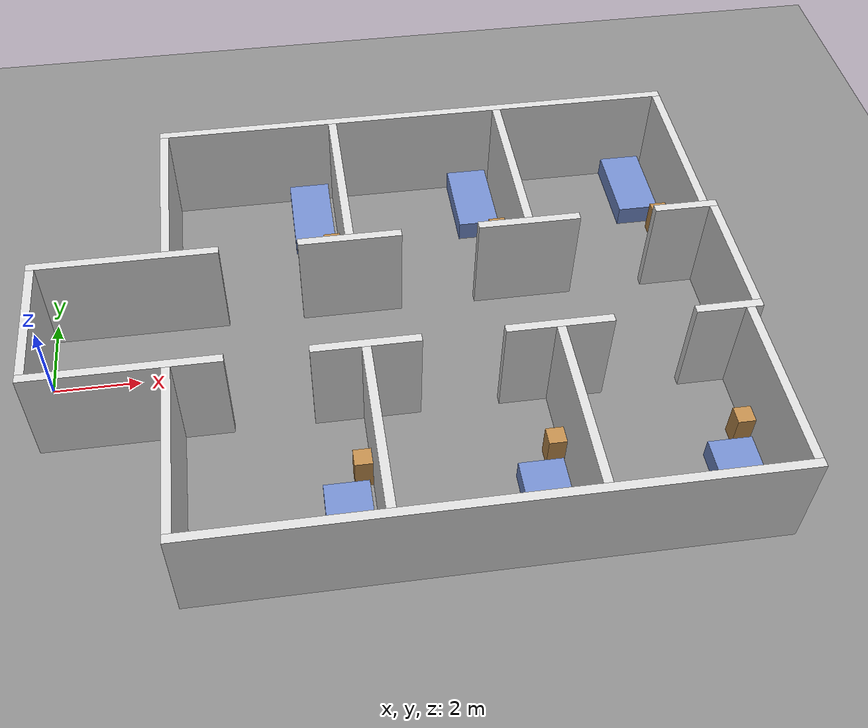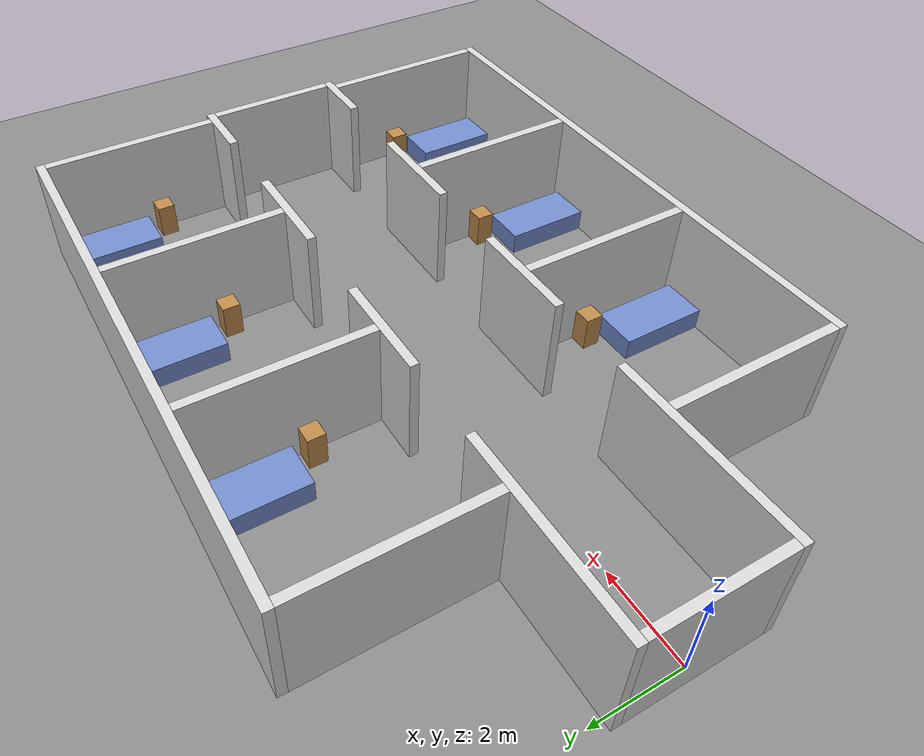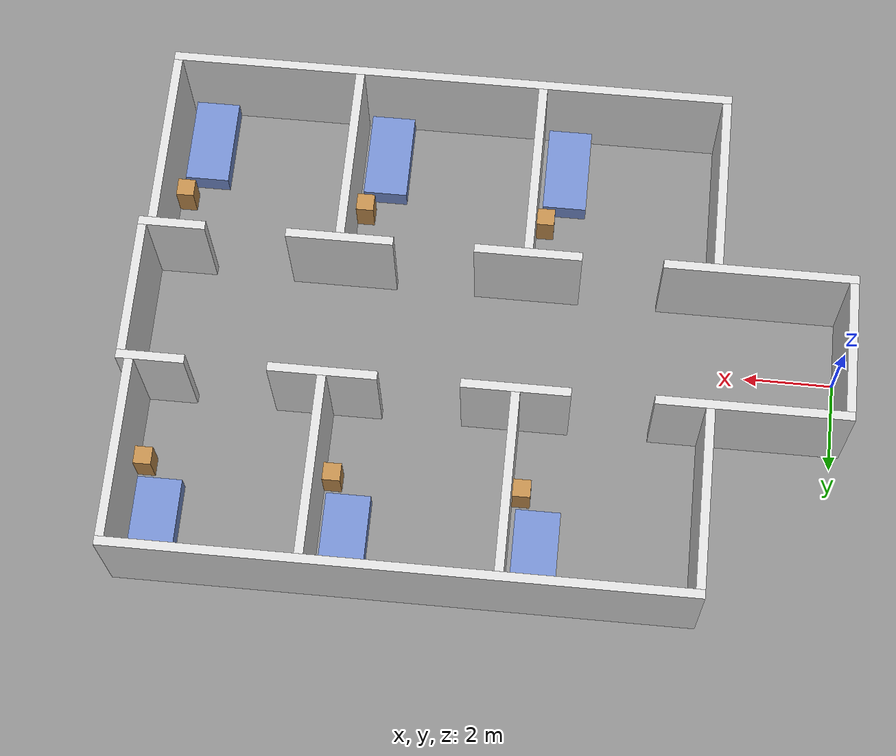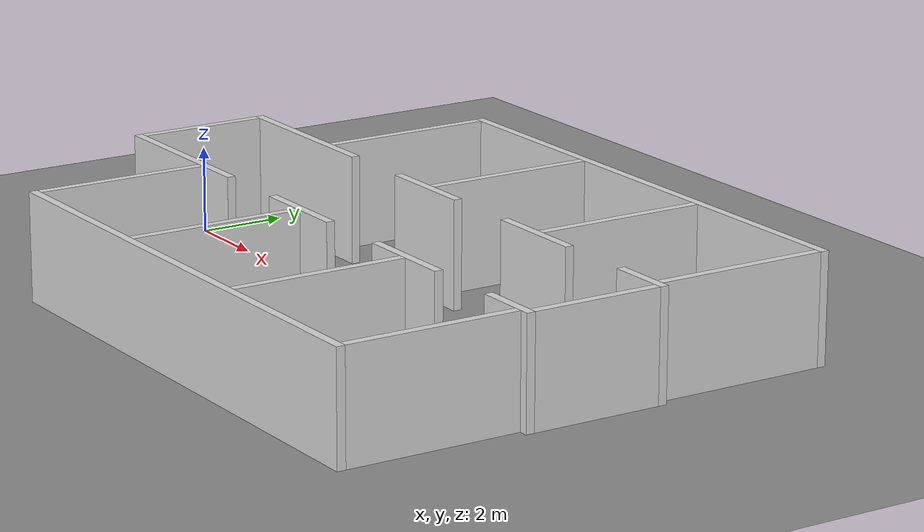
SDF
<?xml version="1.0" ?>
<sdf version="1.6">
  <world name="default">
    <!-- Physics block of the worlds of pal_gazebo_worlds (the PAL robots are tuned for it) -->
    <physics type="ode">
      <gravity>0 0 -9.81</gravity>
      <ode>
        <solver><type>quick</type><iters>50</iters><sor>1.4</sor></solver>
        <constraints>
          <cfm>0.0</cfm>
          <erp>0.2</erp>
          <contact_max_correcting_vel>100.0</contact_max_correcting_vel>
          <contact_surface_layer>0.0</contact_surface_layer>
        </constraints>
      </ode>
      <real_time_update_rate>1000</real_time_update_rate>
      <max_step_size>0.001</max_step_size>
    </physics>
    <!-- Ground truth for the tests: /gazebo/model_states (the tests compare the pose given by
         AMCL with the pose of the model) -->
    <plugin name="gazebo_ros_state" filename="libgazebo_ros_state.so">
      <ros><namespace>/gazebo</namespace></ros>
      <update_rate>10.0</update_rate>
    </plugin>
    <light name="sun" type="directional">
      <cast_shadows>0</cast_shadows>
      <pose>0 0 10 0 0 0</pose>
      <diffuse>0.8 0.8 0.8 1</diffuse>
      <specular>0.2 0.2 0.2 1</specular>
      <direction>0.5 0.1 -0.9</direction>
    </light>
    <model name="ground_plane">
      <static>1</static>
      <link name="link">
        <collision name="collision">
          <geometry><plane><normal>0 0 1</normal><size>100 100</size></plane></geometry>
          <surface><friction><ode><mu>100</mu><mu2>50</mu2></ode></friction></surface>
        </collision>
        <visual name="visual">
          <cast_shadows>0</cast_shadows>
          <geometry><plane><normal>0 0 1</normal><size>100 100</size></plane></geometry>
          <material><ambient>0.55 0.55 0.55 1</ambient><diffuse>0.55 0.55 0.55 1</diffuse></material>
        </visual>
      </link>
    </model>
    <model name="ward">
      <static>1</static>
      <pose>0 0 0 0 0 0</pose>
      <link name="end_west">
        <pose>-0.100 0.000 1.250 0 0 0</pose>
        <collision name="collision">
          <geometry><box><size>0.20 3.00 2.50</size></box></geometry>
        </collision>
        <visual name="visual">
          <geometry><box><size>0.20 3.00 2.50</size></box></geometry>
          <material><ambient>0.85 0.85 0.85 1</ambient><diffuse>0.85 0.85 0.85 1</diffuse></material>
        </visual>
      </link>
      <link name="end_east">
        <pose>15.700 0.000 1.250 0 0 0</pose>
        <collision name="collision">
          <geometry><box><size>0.20 3.00 2.50</size></box></geometry>
        </collision>
        <visual name="visual">
          <geometry><box><size>0.20 3.00 2.50</size></box></geometry>
          <material><ambient>0.85 0.85 0.85 1</ambient><diffuse>0.85 0.85 0.85 1</diffuse></material>
        </visual>
      </link>
      <link name="corridor_wall_north_0">
        <pose>1.950 1.600 1.250 0 0 0</pose>
        <collision name="collision">
          <geometry><box><size>4.30 0.20 2.50</size></box></geometry>
        </collision>
        <visual name="visual">
          <geometry><box><size>4.30 0.20 2.50</size></box></geometry>
          <material><ambient>0.85 0.85 0.85 1</ambient><diffuse>0.85 0.85 0.85 1</diffuse></material>
        </visual>
      </link>
      <link name="corridor_wall_north_1">
        <pose>7.100 1.600 1.250 0 0 0</pose>
        <collision name="collision">
          <geometry><box><size>2.40 0.20 2.50</size></box></geometry>
        </collision>
        <visual name="visual">
          <geometry><box><size>2.40 0.20 2.50</size></box></geometry>
          <material><ambient>0.85 0.85 0.85 1</ambient><diffuse>0.85 0.85 0.85 1</diffuse></material>
        </visual>
      </link>
      <link name="corridor_wall_north_2">
        <pose>11.300 1.600 1.250 0 0 0</pose>
        <collision name="collision">
          <geometry><box><size>2.40 0.20 2.50</size></box></geometry>
        </collision>
        <visual name="visual">
          <geometry><box><size>2.40 0.20 2.50</size></box></geometry>
          <material><ambient>0.85 0.85 0.85 1</ambient><diffuse>0.85 0.85 0.85 1</diffuse></material>
        </visual>
      </link>
      <link name="corridor_wall_north_3">
        <pose>15.050 1.600 1.250 0 0 0</pose>
        <collision name="collision">
          <geometry><box><size>1.50 0.20 2.50</size></box></geometry>
        </collision>
        <visual name="visual">
          <geometry><box><size>1.50 0.20 2.50</size></box></geometry>
          <material><ambient>0.85 0.85 0.85 1</ambient><diffuse>0.85 0.85 0.85 1</diffuse></material>
        </visual>
      </link>
      <link name="room_wall_north_0">
        <pose>2.900 3.700 1.250 0 0 0</pose>
        <collision name="collision">
          <geometry><box><size>0.20 4.00 2.50</size></box></geometry>
        </collision>
        <visual name="visual">
          <geometry><box><size>0.20 4.00 2.50</size></box></geometry>
          <material><ambient>0.85 0.85 0.85 1</ambient><diffuse>0.85 0.85 0.85 1</diffuse></material>
        </visual>
      </link>
      <link name="room_wall_north_1">
        <pose>7.100 3.700 1.250 0 0 0</pose>
        <collision name="collision">
          <geometry><box><size>0.20 4.00 2.50</size></box></geometry>
        </collision>
        <visual name="visual">
          <geometry><box><size>0.20 4.00 2.50</size></box></geometry>
          <material><ambient>0.85 0.85 0.85 1</ambient><diffuse>0.85 0.85 0.85 1</diffuse></material>
        </visual>
      </link>
      <link name="room_wall_north_2">
        <pose>11.300 3.700 1.250 0 0 0</pose>
        <collision name="collision">
          <geometry><box><size>0.20 4.00 2.50</size></box></geometry>
        </collision>
        <visual name="visual">
          <geometry><box><size>0.20 4.00 2.50</size></box></geometry>
          <material><ambient>0.85 0.85 0.85 1</ambient><diffuse>0.85 0.85 0.85 1</diffuse></material>
        </visual>
      </link>
      <link name="room_wall_north_3">
        <pose>15.500 3.700 1.250 0 0 0</pose>
        <collision name="collision">
          <geometry><box><size>0.20 4.00 2.50</size></box></geometry>
        </collision>
        <visual name="visual">
          <geometry><box><size>0.20 4.00 2.50</size></box></geometry>
          <material><ambient>0.85 0.85 0.85 1</ambient><diffuse>0.85 0.85 0.85 1</diffuse></material>
        </visual>
      </link>
      <link name="back_wall_north">
        <pose>9.200 5.800 1.250 0 0 0</pose>
        <collision name="collision">
          <geometry><box><size>12.80 0.20 2.50</size></box></geometry>
        </collision>
        <visual name="visual">
          <geometry><box><size>12.80 0.20 2.50</size></box></geometry>
          <material><ambient>0.85 0.85 0.85 1</ambient><diffuse>0.85 0.85 0.85 1</diffuse></material>
        </visual>
      </link>
      <link name="corridor_wall_south_0">
        <pose>1.950 -1.600 1.250 0 0 0</pose>
        <collision name="collision">
          <geometry><box><size>4.30 0.20 2.50</size></box></geometry>
        </collision>
        <visual name="visual">
          <geometry><box><size>4.30 0.20 2.50</size></box></geometry>
          <material><ambient>0.85 0.85 0.85 1</ambient><diffuse>0.85 0.85 0.85 1</diffuse></material>
        </visual>
      </link>
      <link name="corridor_wall_south_1">
        <pose>7.100 -1.600 1.250 0 0 0</pose>
        <collision name="collision">
          <geometry><box><size>2.40 0.20 2.50</size></box></geometry>
        </collision>
        <visual name="visual">
          <geometry><box><size>2.40 0.20 2.50</size></box></geometry>
          <material><ambient>0.85 0.85 0.85 1</ambient><diffuse>0.85 0.85 0.85 1</diffuse></material>
        </visual>
      </link>
      <link name="corridor_wall_south_2">
        <pose>11.300 -1.600 1.250 0 0 0</pose>
        <collision name="collision">
          <geometry><box><size>2.40 0.20 2.50</size></box></geometry>
        </collision>
        <visual name="visual">
          <geometry><box><size>2.40 0.20 2.50</size></box></geometry>
          <material><ambient>0.85 0.85 0.85 1</ambient><diffuse>0.85 0.85 0.85 1</diffuse></material>
        </visual>
      </link>
      <link name="corridor_wall_south_3">
        <pose>15.050 -1.600 1.250 0 0 0</pose>
        <collision name="collision">
          <geometry><box><size>1.50 0.20 2.50</size></box></geometry>
        </collision>
        <visual name="visual">
          <geometry><box><size>1.50 0.20 2.50</size></box></geometry>
          <material><ambient>0.85 0.85 0.85 1</ambient><diffuse>0.85 0.85 0.85 1</diffuse></material>
        </visual>
      </link>
      <link name="room_wall_south_0">
        <pose>2.900 -3.700 1.250 0 0 0</pose>
        <collision name="collision">
          <geometry><box><size>0.20 4.00 2.50</size></box></geometry>
        </collision>
        <visual name="visual">
          <geometry><box><size>0.20 4.00 2.50</size></box></geometry>
          <material><ambient>0.85 0.85 0.85 1</ambient><diffuse>0.85 0.85 0.85 1</diffuse></material>
        </visual>
      </link>
      <link name="room_wall_south_1">
        <pose>7.100 -3.700 1.250 0 0 0</pose>
        <collision name="collision">
          <geometry><box><size>0.20 4.00 2.50</size></box></geometry>
        </collision>
        <visual name="visual">
          <geometry><box><size>0.20 4.00 2.50</size></box></geometry>
          <material><ambient>0.85 0.85 0.85 1</ambient><diffuse>0.85 0.85 0.85 1</diffuse></material>
        </visual>
      </link>
      <link name="room_wall_south_2">
        <pose>11.300 -3.700 1.250 0 0 0</pose>
        <collision name="collision">
          <geometry><box><size>0.20 4.00 2.50</size></box></geometry>
        </collision>
        <visual name="visual">
          <geometry><box><size>0.20 4.00 2.50</size></box></geometry>
          <material><ambient>0.85 0.85 0.85 1</ambient><diffuse>0.85 0.85 0.85 1</diffuse></material>
        </visual>
      </link>
      <link name="room_wall_south_3">
        <pose>15.500 -3.700 1.250 0 0 0</pose>
        <collision name="collision">
          <geometry><box><size>0.20 4.00 2.50</size></box></geometry>
        </collision>
        <visual name="visual">
          <geometry><box><size>0.20 4.00 2.50</size></box></geometry>
          <material><ambient>0.85 0.85 0.85 1</ambient><diffuse>0.85 0.85 0.85 1</diffuse></material>
        </visual>
      </link>
      <link name="back_wall_south">
        <pose>9.200 -5.800 1.250 0 0 0</pose>
        <collision name="collision">
          <geometry><box><size>12.80 0.20 2.50</size></box></geometry>
        </collision>
        <visual name="visual">
          <geometry><box><size>12.80 0.20 2.50</size></box></geometry>
          <material><ambient>0.85 0.85 0.85 1</ambient><diffuse>0.85 0.85 0.85 1</diffuse></material>
        </visual>
      </link>
      <link name="r01_bed">
        <pose>6.400 4.700 0.250 0 0 0</pose>
        <collision name="collision">
          <geometry><box><size>1.00 2.00 0.50</size></box></geometry>
        </collision>
        <visual name="visual">
          <geometry><box><size>1.00 2.00 0.50</size></box></geometry>
          <material><ambient>0.45 0.55 0.80 1</ambient><diffuse>0.45 0.55 0.80 1</diffuse></material>
        </visual>
      </link>
      <link name="r01_dispenser_table">
        <pose>6.800 3.300 0.400 0 0 0</pose>
        <collision name="collision">
          <geometry><box><size>0.40 0.40 0.80</size></box></geometry>
        </collision>
        <visual name="visual">
          <geometry><box><size>0.40 0.40 0.80</size></box></geometry>
          <material><ambient>0.75 0.55 0.30 1</ambient><diffuse>0.75 0.55 0.30 1</diffuse></material>
        </visual>
      </link>
      <link name="r02_bed">
        <pose>6.400 -4.700 0.250 0 0 0</pose>
        <collision name="collision">
          <geometry><box><size>1.00 2.00 0.50</size></box></geometry>
        </collision>
        <visual name="visual">
          <geometry><box><size>1.00 2.00 0.50</size></box></geometry>
          <material><ambient>0.45 0.55 0.80 1</ambient><diffuse>0.45 0.55 0.80 1</diffuse></material>
        </visual>
      </link>
      <link name="r02_dispenser_table">
        <pose>6.800 -3.300 0.400 0 0 0</pose>
        <collision name="collision">
          <geometry><box><size>0.40 0.40 0.80</size></box></geometry>
        </collision>
        <visual name="visual">
          <geometry><box><size>0.40 0.40 0.80</size></box></geometry>
          <material><ambient>0.75 0.55 0.30 1</ambient><diffuse>0.75 0.55 0.30 1</diffuse></material>
        </visual>
      </link>
      <link name="r03_bed">
        <pose>10.600 4.700 0.250 0 0 0</pose>
        <collision name="collision">
          <geometry><box><size>1.00 2.00 0.50</size></box></geometry>
        </collision>
        <visual name="visual">
          <geometry><box><size>1.00 2.00 0.50</size></box></geometry>
          <material><ambient>0.45 0.55 0.80 1</ambient><diffuse>0.45 0.55 0.80 1</diffuse></material>
        </visual>
      </link>
      <link name="r03_dispenser_table">
        <pose>11.000 3.300 0.400 0 0 0</pose>
        <collision name="collision">
          <geometry><box><size>0.40 0.40 0.80</size></box></geometry>
        </collision>
        <visual name="visual">
          <geometry><box><size>0.40 0.40 0.80</size></box></geometry>
          <material><ambient>0.75 0.55 0.30 1</ambient><diffuse>0.75 0.55 0.30 1</diffuse></material>
        </visual>
      </link>
      <link name="r04_bed">
        <pose>10.600 -4.700 0.250 0 0 0</pose>
        <collision name="collision">
          <geometry><box><size>1.00 2.00 0.50</size></box></geometry>
        </collision>
        <visual name="visual">
          <geometry><box><size>1.00 2.00 0.50</size></box></geometry>
          <material><ambient>0.45 0.55 0.80 1</ambient><diffuse>0.45 0.55 0.80 1</diffuse></material>
        </visual>
      </link>
      <link name="r04_dispenser_table">
        <pose>11.000 -3.300 0.400 0 0 0</pose>
        <collision name="collision">
          <geometry><box><size>0.40 0.40 0.80</size></box></geometry>
        </collision>
        <visual name="visual">
          <geometry><box><size>0.40 0.40 0.80</size></box></geometry>
          <material><ambient>0.75 0.55 0.30 1</ambient><diffuse>0.75 0.55 0.30 1</diffuse></material>
        </visual>
      </link>
      <link name="r05_bed">
        <pose>14.800 4.700 0.250 0 0 0</pose>
        <collision name="collision">
          <geometry><box><size>1.00 2.00 0.50</size></box></geometry>
        </collision>
        <visual name="visual">
          <geometry><box><size>1.00 2.00 0.50</size></box></geometry>
          <material><ambient>0.45 0.55 0.80 1</ambient><diffuse>0.45 0.55 0.80 1</diffuse></material>
        </visual>
      </link>
      <link name="r05_dispenser_table">
        <pose>15.200 3.300 0.400 0 0 0</pose>
        <collision name="collision">
          <geometry><box><size>0.40 0.40 0.80</size></box></geometry>
        </collision>
        <visual name="visual">
          <geometry><box><size>0.40 0.40 0.80</size></box></geometry>
          <material><ambient>0.75 0.55 0.30 1</ambient><diffuse>0.75 0.55 0.30 1</diffuse></material>
        </visual>
      </link>
      <link name="r06_bed">
        <pose>14.800 -4.700 0.250 0 0 0</pose>
        <collision name="collision">
          <geometry><box><size>1.00 2.00 0.50</size></box></geometry>
        </collision>
        <visual name="visual">
          <geometry><box><size>1.00 2.00 0.50</size></box></geometry>
          <material><ambient>0.45 0.55 0.80 1</ambient><diffuse>0.45 0.55 0.80 1</diffuse></material>
        </visual>
      </link>
      <link name="r06_dispenser_table">
        <pose>15.200 -3.300 0.400 0 0 0</pose>
        <collision name="collision">
          <geometry><box><size>0.40 0.40 0.80</size></box></geometry>
        </collision>
        <visual name="visual">
          <geometry><box><size>0.40 0.40 0.80</size></box></geometry>
          <material><ambient>0.75 0.55 0.30 1</ambient><diffuse>0.75 0.55 0.30 1</diffuse></material>
        </visual>
      </link>
    </model>
    <gui>
      <camera name="user_camera">
        <pose>7.80 0 28 0 1.5708 0</pose>
      </camera>
    </gui>
  </world>
</sdf>
